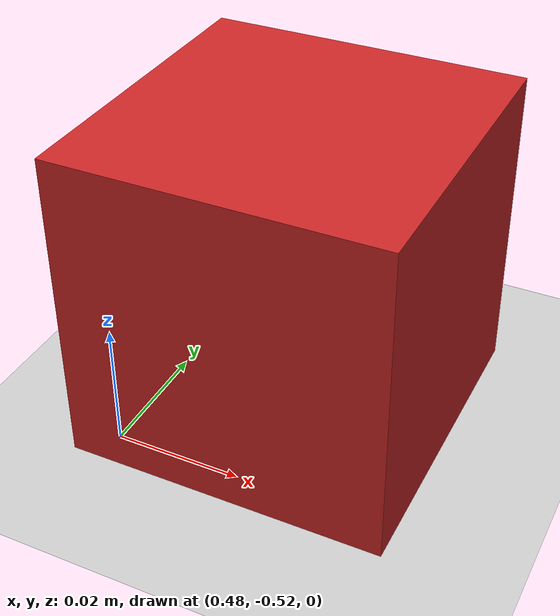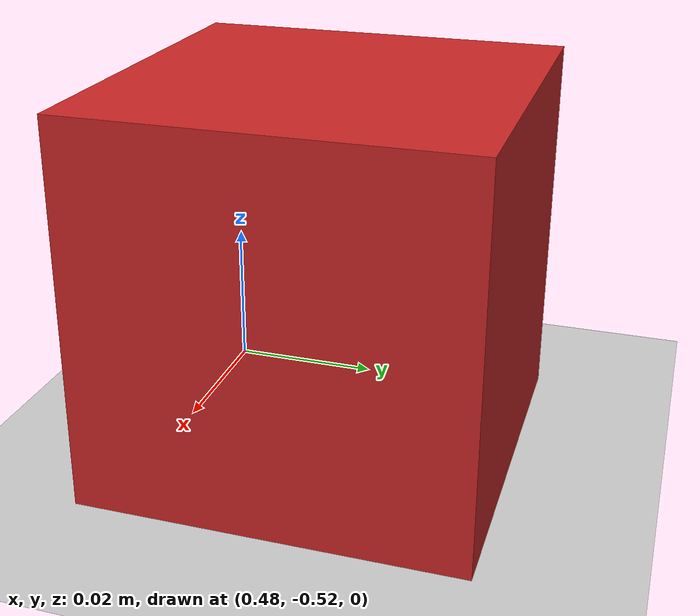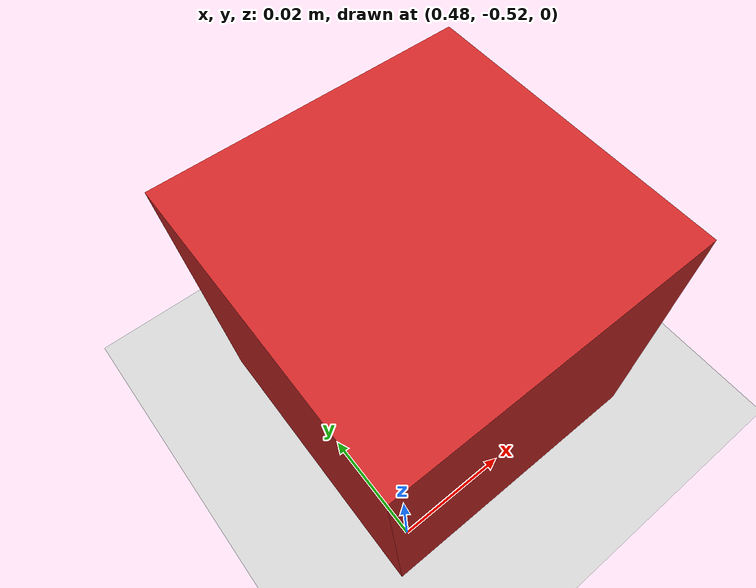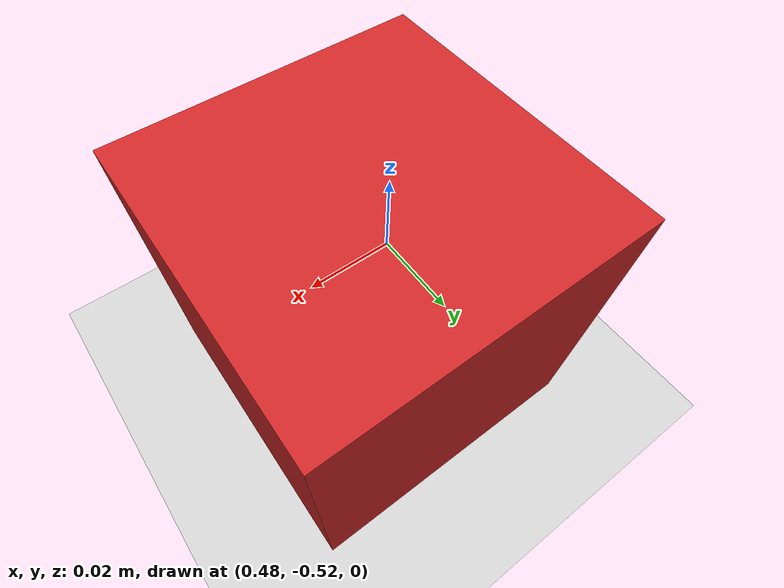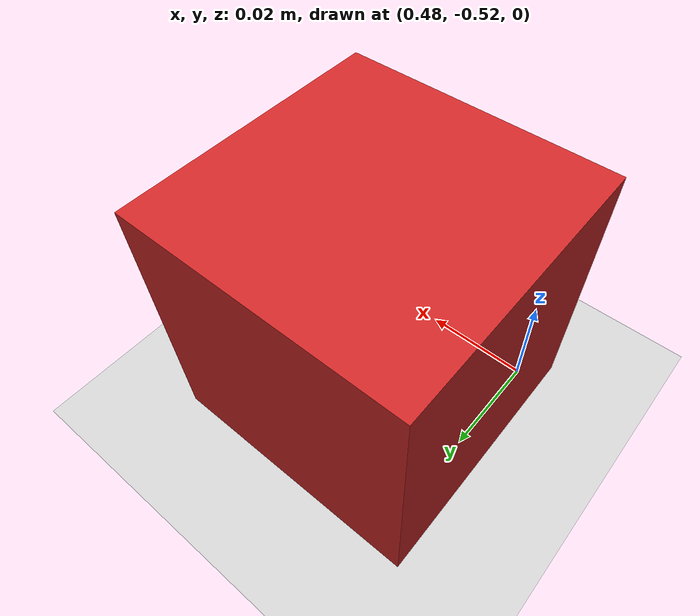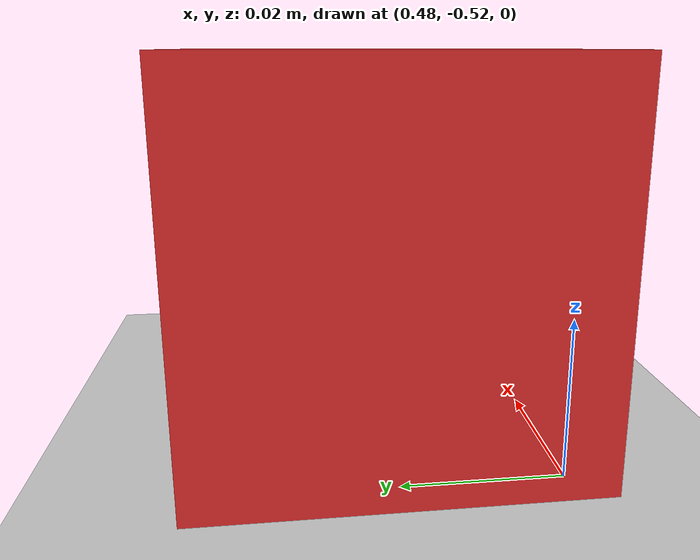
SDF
<?xml version="1.0" ?>
<sdf version="1.6">
  <world name="vla_world">
    <light name="sun" type="directional">
      <cast_shadows>1</cast_shadows>
      <pose>0 0 10 0 -0 0</pose>
      <diffuse>0.8 0.8 0.8 1</diffuse>
      <specular>0.2 0.2 0.2 1</specular>
      <attenuation>
        <range>1000</range>
        <constant>0.9</constant>
        <linear>0.01</linear>
        <quadratic>0.001</quadratic>
      </attenuation>
      <direction>-0.5 0.1 -0.9</direction>
    </light>
    <model name="ground_plane">
      <static>true</static>
      <link name="link">
        <collision name="collision">
          <geometry>
            <plane>
              <normal>0 0 1</normal>
              <size>100 100</size>
            </plane>
          </geometry>
          <surface>
            <friction>
              <ode>
                <mu>1.0</mu>
                <mu2>1.0</mu2>
              </ode>
            </friction>
            <bounce/>
            <contact>
              <ode/>
            </contact>
          </surface>
        </collision>
        <visual name="visual">
          <geometry>
            <plane>
              <normal>0 0 1</normal>
              <size>100 100</size>
            </plane>
          </geometry>
          <material>
            <ambient>0.8 0.8 0.8 1</ambient>
            <diffuse>0.8 0.8 0.8 1</diffuse>
            <specular>0.8 0.8 0.8 1</specular>
          </material>
        </visual>
      </link>
    </model>

    <!-- Placeholder for a simple cube object -->
    <model name="red_cube">
      <pose>0.5 -0.5 0.025 0 0 0</pose>
      <link name="cube_link">
        <collision name="collision">
          <geometry>
            <box>
              <size>0.05 0.05 0.05</size>
            </box>
          </geometry>
        </collision>
        <visual name="visual">
          <geometry>
            <box>
              <size>0.05 0.05 0.05</size>
            </box>
          </geometry>
          <material>
            <script>
              <uri>file://media/materials/scripts/gazebo.material</uri>
              <name>Gazebo/Red</name>
            </script>
          </material>
        </visual>
      </link>
    </model>

    <!-- Placeholder for a simple humanoid robot (assuming it will be loaded separately or from an existing model) -->
    <!-- This world file assumes the robot model is defined and spawned via a ROS launch file -->

  </world>
</sdf>
